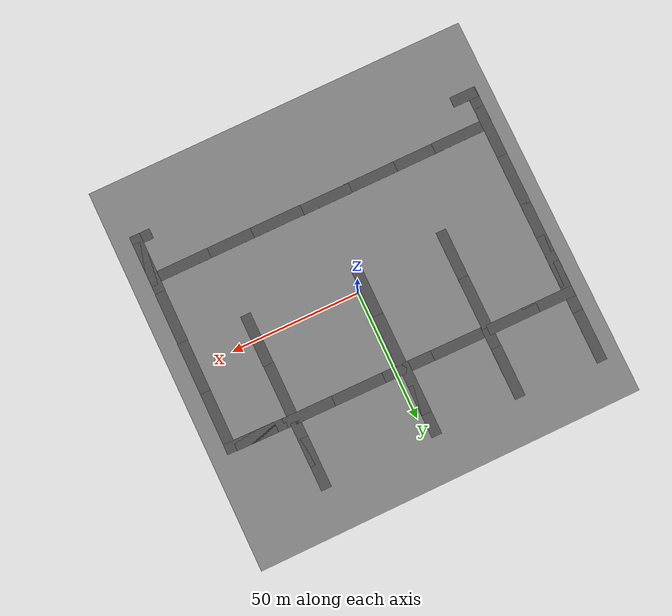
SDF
<sdf version="1.10">
 <world name="default">
  <physics type="ode">
   <max_step_size>0.0040000000000000001</max_step_size>
   <real_time_factor>1</real_time_factor>
   <real_time_update_rate>250</real_time_update_rate>
  </physics>
  <plugin name="gz::sim::systems::Physics" filename="gz-sim-physics-system"/>
  <plugin name="gz::sim::systems::SceneBroadcaster" filename="gz-sim-scene-broadcaster-system"/>
  <plugin name="gz::sim::systems::UserCommands" filename="gz-sim-user-commands-system"/>
  <plugin name="gz::sim::systems::Contact" filename="gz-sim-contact-system"/>
  <plugin name="gz::sim::systems::Imu" filename="gz-sim-imu-system"/>
  <plugin name="gz::sim::systems::AirPressure" filename="gz-sim-air-pressure-system"/>
  <plugin name="gz::sim::systems::ApplyLinkWrench" filename="gz-sim-apply-link-wrench-system"/>
  <plugin name="gz::sim::systems::NavSat" filename="gz-sim-navsat-system"/>
  <plugin name="gz::sim::systems::Sensors" filename="gz-sim-sensors-system">
   <render_engine>ogre2</render_engine>
  </plugin>
  <gravity>0 0 -9.8065999999999995</gravity>
  <magnetic_field>6.0000000000000002e-06 2.3e-05 -4.1999999999999998e-05</magnetic_field>
  <atmosphere type="adiabatic"/>
  <scene>
   <grid>false</grid>
   <ambient>0.400000006 0.400000006 0.400000006 1</ambient>
   <background>0.699999988 0.699999988 0.699999988 1</background>
   <shadows>true</shadows>
  </scene>
  <spherical_coordinates>
   <surface_model>EARTH_WGS84</surface_model>
   <world_frame_orientation>ENU</world_frame_orientation>
   <latitude_deg>50.293615072404997</latitude_deg>
   <longitude_deg>18.674141300161885</longitude_deg>
   <elevation>0</elevation>
   <heading_deg>0</heading_deg>
  </spherical_coordinates>
  <model name="mine">
   <pose>-1.6293554306030273 -0.00092343427240848541 0 0 0 1.5732200240569525</pose>
   <static>true</static>
   <link name="link">
    <collision name="collision">
     <geometry>
      <mesh>
       <uri>file:///home/karol/Desktop/Repo/dron_sim/sim_bringup/worlds/model://mine/meshes/mine.dae</uri>
      </mesh>
     </geometry>
    </collision>
    <visual name="visual">
     <geometry>
      <mesh>
       <uri>file:///home/karol/Desktop/Repo/dron_sim/sim_bringup/worlds/model://mine/meshes/mine.dae</uri>
      </mesh>
     </geometry>
    </visual>
    <inertial>
     <mass>1</mass>
     <inertia><ixx>1</ixx><ixy>0</ixy><ixz>0</ixz><iyy>1</iyy><iyz>0</iyz><izz>1</izz></inertia>
    </inertial>
   </link>
  </model>
  <model name="asphalt_plane_0">
   <static>true</static>
   <link name="link">
    <collision name="collision"><geometry><box><size>20 4 0.10000000000000001</size></box></geometry></collision>
    <visual name="visual">
     <cast_shadows>false</cast_shadows>
     <geometry><box><size>20 4 0.10000000000000001</size></box></geometry>
     <material>
      <script>
       <uri>https://fuel.gazebosim.org/1.0/openrobotics/models/asphalt plane/3/files/materials/scripts</uri>
       <uri>https://fuel.gazebosim.org/1.0/openrobotics/models/asphalt plane/3/files/materials/textures</uri>
       <name>vrc/asphalt</name>
      </script>
     </material>
    </visual>
    <inertial>
     <mass>1</mass>
     <inertia><ixx>1</ixx><ixy>0</ixy><ixz>0</ixz><iyy>1</iyy><iyz>0</iyz><izz>1</izz></inertia>
    </inertial>
   </link>
   <pose>-61.217483520507812 32.286003112792969 0 0 0 -0.006206730176657297</pose>
  </model>
  <model name="asphalt_plane_1">
   <static>true</static>
   <link name="link">
    <collision name="collision"><geometry><box><size>20 4 0.10000000000000001</size></box></geometry></collision>
    <visual name="visual">
     <cast_shadows>false</cast_shadows>
     <geometry><box><size>20 4 0.10000000000000001</size></box></geometry>
     <material>
      <script>
       <uri>https://fuel.gazebosim.org/1.0/openrobotics/models/asphalt plane/3/files/materials/scripts</uri>
       <uri>https://fuel.gazebosim.org/1.0/openrobotics/models/asphalt plane/3/files/materials/textures</uri>
       <name>vrc/asphalt</name>
      </script>
     </material>
    </visual>
    <inertial>
     <mass>1</mass>
     <inertia><ixx>1</ixx><ixy>0</ixy><ixz>0</ixz><iyy>1</iyy><iyz>0</iyz><izz>1</izz></inertia>
    </inertial>
   </link>
   <pose>-24.775663375854492 32.077861785888672 0 0 0 -0.0095926499976310801</pose>
  </model>
  <model name="asphalt_plane_2">
   <static>true</static>
   <link name="link">
    <collision name="collision"><geometry><box><size>20 4 0.10000000000000001</size></box></geometry></collision>
    <visual name="visual">
     <cast_shadows>false</cast_shadows>
     <geometry><box><size>20 4 0.10000000000000001</size></box></geometry>
     <material>
      <script>
       <uri>https://fuel.gazebosim.org/1.0/openrobotics/models/asphalt plane/3/files/materials/scripts</uri>
       <uri>https://fuel.gazebosim.org/1.0/openrobotics/models/asphalt plane/3/files/materials/textures</uri>
       <name>vrc/asphalt</name>
      </script>
     </material>
    </visual>
    <inertial>
     <mass>1</mass>
     <inertia><ixx>1</ixx><ixy>0</ixy><ixz>0</ixz><iyy>1</iyy><iyz>0</iyz><izz>1</izz></inertia>
    </inertial>
   </link>
   <pose>-5.012444019317627 31.79267692565918 0 0 0 -0.0152154007243714</pose>
  </model>
  <model name="asphalt_plane_3">
   <static>true</static>
   <link name="link">
    <collision name="collision"><geometry><box><size>20 4 0.10000000000000001</size></box></geometry></collision>
    <visual name="visual">
     <cast_shadows>false</cast_shadows>
     <geometry><box><size>20 4 0.10000000000000001</size></box></geometry>
     <material>
      <script>
       <uri>https://fuel.gazebosim.org/1.0/openrobotics/models/asphalt plane/3/files/materials/scripts</uri>
       <uri>https://fuel.gazebosim.org/1.0/openrobotics/models/asphalt plane/3/files/materials/textures</uri>
       <name>vrc/asphalt</name>
      </script>
     </material>
    </visual>
    <inertial>
     <mass>1</mass>
     <inertia><ixx>1</ixx><ixy>0</ixy><ixz>0</ixz><iyy>1</iyy><iyz>0</iyz><izz>1</izz></inertia>
    </inertial>
   </link>
   <pose>14.530755043029785 31.585712432861328 0 0 0 -0.0069883098659203335</pose>
  </model>
  <model name="asphalt_plane_4">
   <static>true</static>
   <link name="link">
    <collision name="collision"><geometry><box><size>20 4 0.10000000000000001</size></box></geometry></collision>
    <visual name="visual">
     <cast_shadows>false</cast_shadows>
     <geometry><box><size>20 4 0.10000000000000001</size></box></geometry>
     <material>
      <script>
       <uri>https://fuel.gazebosim.org/1.0/openrobotics/models/asphalt plane/3/files/materials/scripts</uri>
       <uri>https://fuel.gazebosim.org/1.0/openrobotics/models/asphalt plane/3/files/materials/textures</uri>
       <name>vrc/asphalt</name>
      </script>
     </material>
    </visual>
    <inertial>
     <mass>1</mass>
     <inertia><ixx>1</ixx><ixy>0</ixy><ixz>0</ixz><iyy>1</iyy><iyz>0</iyz><izz>1</izz></inertia>
    </inertial>
   </link>
   <pose>34.048507690429688 31.427370071411133 0 0 0 -0.0072270004109684588</pose>
  </model>
  <model name="asphalt_plane_5">
   <static>true</static>
   <link name="link">
    <collision name="collision"><geometry><box><size>20 4 0.10000000000000001</size></box></geometry></collision>
    <visual name="visual">
     <cast_shadows>false</cast_shadows>
     <geometry><box><size>20 4 0.10000000000000001</size></box></geometry>
     <material>
      <script>
       <uri>https://fuel.gazebosim.org/1.0/openrobotics/models/asphalt plane/3/files/materials/scripts</uri>
       <uri>https://fuel.gazebosim.org/1.0/openrobotics/models/asphalt plane/3/files/materials/textures</uri>
       <name>vrc/asphalt</name>
      </script>
     </material>
    </visual>
    <inertial>
     <mass>1</mass>
     <inertia><ixx>1</ixx><ixy>0</ixy><ixz>0</ixz><iyy>1</iyy><iyz>0</iyz><izz>1</izz></inertia>
    </inertial>
   </link>
   <pose>53.194240570068359 31.142539978027344 0 0 0 -0.014885799827273137</pose>
  </model>
  <model name="asphalt_plane_6">
   <static>true</static>
   <link name="link">
    <collision name="collision"><geometry><box><size>20 4 0.10000000000000001</size></box></geometry></collision>
    <visual name="visual">
     <cast_shadows>false</cast_shadows>
     <geometry><box><size>20 4 0.10000000000000001</size></box></geometry>
     <material>
      <script>
       <uri>https://fuel.gazebosim.org/1.0/openrobotics/models/asphalt plane/3/files/materials/scripts</uri>
       <uri>https://fuel.gazebosim.org/1.0/openrobotics/models/asphalt plane/3/files/materials/textures</uri>
       <name>vrc/asphalt</name>
      </script>
     </material>
    </visual>
    <inertial>
     <mass>1</mass>
     <inertia><ixx>1</ixx><ixy>0</ixy><ixz>0</ixz><iyy>1</iyy><iyz>0</iyz><izz>1</izz></inertia>
    </inertial>
   </link>
   <pose>56.965312957763672 30.97804069519043 0 0 0 -0.018850799113130094</pose>
  </model>
  <model name="asphalt_plane_7">
   <static>true</static>
   <link name="link">
    <collision name="collision"><geometry><box><size>4 20 0.10000000000000001</size></box></geometry></collision>
    <visual name="visual">
     <cast_shadows>false</cast_shadows>
     <geometry><box><size>4 20 0.10000000000000001</size></box></geometry>
     <material>
      <script>
       <uri>https://fuel.gazebosim.org/1.0/openrobotics/models/asphalt plane/3/files/materials/scripts</uri>
       <uri>https://fuel.gazebosim.org/1.0/openrobotics/models/asphalt plane/3/files/materials/textures</uri>
       <name>vrc/asphalt</name>
      </script>
     </material>
    </visual>
    <inertial>
     <mass>1</mass>
     <inertia><ixx>1</ixx><ixy>0</ixy><ixz>0</ixz><iyy>1</iyy><iyz>0</iyz><izz>1</izz></inertia>
    </inertial>
   </link>
   <pose>-36.754901885986328 40.108165740966797 0 0 0 0</pose>
  </model>
  <model name="asphalt_plane_8">
   <static>true</static>
   <link name="link">
    <collision name="collision"><geometry><box><size>4 20 0.10000000000000001</size></box></geometry></collision>
    <visual name="visual">
     <cast_shadows>false</cast_shadows>
     <geometry><box><size>4 20 0.10000000000000001</size></box></geometry>
     <material>
      <script>
       <uri>https://fuel.gazebosim.org/1.0/openrobotics/models/asphalt plane/3/files/materials/scripts</uri>
       <uri>https://fuel.gazebosim.org/1.0/openrobotics/models/asphalt plane/3/files/materials/textures</uri>
       <name>vrc/asphalt</name>
      </script>
     </material>
    </visual>
    <inertial>
     <mass>1</mass>
     <inertia><ixx>1</ixx><ixy>0</ixy><ixz>0</ixz><iyy>1</iyy><iyz>0</iyz><izz>1</izz></inertia>
    </inertial>
   </link>
   <pose>-36.830970764160156 48.987098693847656 0 0 0 0</pose>
  </model>
  <model name="asphalt_plane_9">
   <static>true</static>
   <link name="link">
    <collision name="collision"><geometry><box><size>4 20 0.10000000000000001</size></box></geometry></collision>
    <visual name="visual">
     <cast_shadows>false</cast_shadows>
     <geometry><box><size>4 20 0.10000000000000001</size></box></geometry>
     <material>
      <script>
       <uri>https://fuel.gazebosim.org/1.0/openrobotics/models/asphalt plane/3/files/materials/scripts</uri>
       <uri>https://fuel.gazebosim.org/1.0/openrobotics/models/asphalt plane/3/files/materials/textures</uri>
       <name>vrc/asphalt</name>
      </script>
     </material>
    </visual>
    <inertial>
     <mass>1</mass>
     <inertia><ixx>1</ixx><ixy>0</ixy><ixz>0</ixz><iyy>1</iyy><iyz>0</iyz><izz>1</izz></inertia>
    </inertial>
   </link>
   <pose>-69.2471923828125 29.912099838256836 0 0 0 0</pose>
  </model>
  <model name="asphalt_plane_10">
   <static>true</static>
   <link name="link">
    <collision name="collision"><geometry><box><size>4 20 0.10000000000000001</size></box></geometry></collision>
    <visual name="visual">
     <cast_shadows>false</cast_shadows>
     <geometry><box><size>4 20 0.10000000000000001</size></box></geometry>
     <material>
      <script>
       <uri>https://fuel.gazebosim.org/1.0/openrobotics/models/asphalt plane/3/files/materials/scripts</uri>
       <uri>https://fuel.gazebosim.org/1.0/openrobotics/models/asphalt plane/3/files/materials/textures</uri>
       <name>vrc/asphalt</name>
      </script>
     </material>
    </visual>
    <inertial>
     <mass>1</mass>
     <inertia><ixx>1</ixx><ixy>0</ixy><ixz>0</ixz><iyy>1</iyy><iyz>0</iyz><izz>1</izz></inertia>
    </inertial>
   </link>
   <pose>-69.254173278808594 49.835899353027344 0 0 0 0</pose>
  </model>
  <model name="asphalt_plane_11">
   <static>true</static>
   <link name="link">
    <collision name="collision"><geometry><box><size>4 20 0.10000000000000001</size></box></geometry></collision>
    <visual name="visual">
     <cast_shadows>false</cast_shadows>
     <geometry><box><size>4 20 0.10000000000000001</size></box></geometry>
     <material>
      <script>
       <uri>https://fuel.gazebosim.org/1.0/openrobotics/models/asphalt plane/3/files/materials/scripts</uri>
       <uri>https://fuel.gazebosim.org/1.0/openrobotics/models/asphalt plane/3/files/materials/textures</uri>
       <name>vrc/asphalt</name>
      </script>
     </material>
    </visual>
    <inertial>
     <mass>1</mass>
     <inertia><ixx>1</ixx><ixy>0</ixy><ixz>0</ixz><iyy>1</iyy><iyz>0</iyz><izz>1</izz></inertia>
    </inertial>
   </link>
   <pose>-3.8194301128387451 39.800125122070312 0 0 0 0</pose>
  </model>
  <model name="asphalt_plane_12">
   <static>true</static>
   <link name="link">
    <collision name="collision"><geometry><box><size>4 20 0.10000000000000001</size></box></geometry></collision>
    <visual name="visual">
     <cast_shadows>false</cast_shadows>
     <geometry><box><size>4 20 0.10000000000000001</size></box></geometry>
     <material>
      <script>
       <uri>https://fuel.gazebosim.org/1.0/openrobotics/models/asphalt plane/3/files/materials/scripts</uri>
       <uri>https://fuel.gazebosim.org/1.0/openrobotics/models/asphalt plane/3/files/materials/textures</uri>
       <name>vrc/asphalt</name>
      </script>
     </material>
    </visual>
    <inertial>
     <mass>1</mass>
     <inertia><ixx>1</ixx><ixy>0</ixy><ixz>0</ixz><iyy>1</iyy><iyz>0</iyz><izz>1</izz></inertia>
    </inertial>
   </link>
   <pose>-3.8157851696014404 48.527198791503906 0 0 0 0</pose>
  </model>
  <model name="asphalt_plane_13">
   <static>true</static>
   <link name="link">
    <collision name="collision"><geometry><box><size>4 20 0.10000000000000001</size></box></geometry></collision>
    <visual name="visual">
     <cast_shadows>false</cast_shadows>
     <geometry><box><size>4 20 0.10000000000000001</size></box></geometry>
     <material>
      <script>
       <uri>https://fuel.gazebosim.org/1.0/openrobotics/models/asphalt plane/3/files/materials/scripts</uri>
       <uri>https://fuel.gazebosim.org/1.0/openrobotics/models/asphalt plane/3/files/materials/textures</uri>
       <name>vrc/asphalt</name>
      </script>
     </material>
    </visual>
    <inertial>
     <mass>1</mass>
     <inertia><ixx>1</ixx><ixy>0</ixy><ixz>0</ixz><iyy>1</iyy><iyz>0</iyz><izz>1</izz></inertia>
    </inertial>
   </link>
   <pose>40.065200805664062 39.448524475097656 0 0 0 0</pose>
  </model>
  <model name="asphalt_plane_14">
   <static>true</static>
   <link name="link">
    <collision name="collision"><geometry><box><size>4 20 0.10000000000000001</size></box></geometry></collision>
    <visual name="visual">
     <cast_shadows>false</cast_shadows>
     <geometry><box><size>4 20 0.10000000000000001</size></box></geometry>
     <material>
      <script>
       <uri>https://fuel.gazebosim.org/1.0/openrobotics/models/asphalt plane/3/files/materials/scripts</uri>
       <uri>https://fuel.gazebosim.org/1.0/openrobotics/models/asphalt plane/3/files/materials/textures</uri>
       <name>vrc/asphalt</name>
      </script>
     </material>
    </visual>
    <inertial>
     <mass>1</mass>
     <inertia><ixx>1</ixx><ixy>0</ixy><ixz>0</ixz><iyy>1</iyy><iyz>0</iyz><izz>1</izz></inertia>
    </inertial>
   </link>
   <pose>40.003288269042969 48.785900115966797 0 0 0 0</pose>
  </model>
  <model name="asphalt_plane_15">
   <static>true</static>
   <link name="link">
    <collision name="collision"><geometry><box><size>4 20 0.10000000000000001</size></box></geometry></collision>
    <visual name="visual">
     <cast_shadows>false</cast_shadows>
     <geometry><box><size>4 20 0.10000000000000001</size></box></geometry>
     <material>
      <script>
       <uri>https://fuel.gazebosim.org/1.0/openrobotics/models/asphalt plane/3/files/materials/scripts</uri>
       <uri>https://fuel.gazebosim.org/1.0/openrobotics/models/asphalt plane/3/files/materials/textures</uri>
       <name>vrc/asphalt</name>
      </script>
     </material>
    </visual>
    <inertial>
     <mass>1</mass>
     <inertia><ixx>1</ixx><ixy>0</ixy><ixz>0</ixz><iyy>1</iyy><iyz>0</iyz><izz>1</izz></inertia>
    </inertial>
   </link>
   <pose>64.909599304199219 19.035907745361328 0 0 0 0</pose>
  </model>
  <model name="asphalt_plane_16">
   <static>true</static>
   <link name="link">
    <collision name="collision"><geometry><box><size>4 20 0.10000000000000001</size></box></geometry></collision>
    <visual name="visual">
     <cast_shadows>false</cast_shadows>
     <geometry><box><size>4 20 0.10000000000000001</size></box></geometry>
     <material>
      <script>
       <uri>https://fuel.gazebosim.org/1.0/openrobotics/models/asphalt plane/3/files/materials/scripts</uri>
       <uri>https://fuel.gazebosim.org/1.0/openrobotics/models/asphalt plane/3/files/materials/textures</uri>
       <name>vrc/asphalt</name>
      </script>
     </material>
    </visual>
    <inertial>
     <mass>1</mass>
     <inertia><ixx>1</ixx><ixy>0</ixy><ixz>0</ixz><iyy>1</iyy><iyz>0</iyz><izz>1</izz></inertia>
    </inertial>
   </link>
   <pose>64.915397644042969 -0.956828773021698 0 0 0 0</pose>
  </model>
  <model name="asphalt_plane_17">
   <static>true</static>
   <link name="link">
    <collision name="collision"><geometry><box><size>4 20 0.10000000000000001</size></box></geometry></collision>
    <visual name="visual">
     <cast_shadows>false</cast_shadows>
     <geometry><box><size>4 20 0.10000000000000001</size></box></geometry>
     <material>
      <script>
       <uri>https://fuel.gazebosim.org/1.0/openrobotics/models/asphalt plane/3/files/materials/scripts</uri>
       <uri>https://fuel.gazebosim.org/1.0/openrobotics/models/asphalt plane/3/files/materials/textures</uri>
       <name>vrc/asphalt</name>
      </script>
     </material>
    </visual>
    <inertial>
     <mass>1</mass>
     <inertia><ixx>1</ixx><ixy>0</ixy><ixz>0</ixz><iyy>1</iyy><iyz>0</iyz><izz>1</izz></inertia>
    </inertial>
   </link>
   <pose>64.841201782226562 -20.834541320800781 0 0 0 0</pose>
  </model>
  <model name="asphalt_plane_18">
   <static>true</static>
   <link name="link">
    <collision name="collision"><geometry><box><size>4 20 0.10000000000000001</size></box></geometry></collision>
    <visual name="visual">
     <cast_shadows>false</cast_shadows>
     <geometry><box><size>4 20 0.10000000000000001</size></box></geometry>
     <material>
      <script>
       <uri>https://fuel.gazebosim.org/1.0/openrobotics/models/asphalt plane/3/files/materials/scripts</uri>
       <uri>https://fuel.gazebosim.org/1.0/openrobotics/models/asphalt plane/3/files/materials/textures</uri>
       <name>vrc/asphalt</name>
      </script>
     </material>
    </visual>
    <inertial>
     <mass>1</mass>
     <inertia><ixx>1</ixx><ixy>0</ixy><ixz>0</ixz><iyy>1</iyy><iyz>0</iyz><izz>1</izz></inertia>
    </inertial>
   </link>
   <pose>64.738609313964844 -40.751701354980469 0 0 0 0</pose>
  </model>
  <model name="asphalt_plane_19">
   <static>true</static>
   <link name="link">
    <collision name="collision"><geometry><box><size>4 20 0.10000000000000001</size></box></geometry></collision>
    <visual name="visual">
     <cast_shadows>false</cast_shadows>
     <geometry><box><size>4 20 0.10000000000000001</size></box></geometry>
     <material>
      <script>
       <uri>https://fuel.gazebosim.org/1.0/openrobotics/models/asphalt plane/3/files/materials/scripts</uri>
       <uri>https://fuel.gazebosim.org/1.0/openrobotics/models/asphalt plane/3/files/materials/textures</uri>
       <name>vrc/asphalt</name>
      </script>
     </material>
    </visual>
    <inertial>
     <mass>1</mass>
     <inertia><ixx>1</ixx><ixy>0</ixy><ixz>0</ixz><iyy>1</iyy><iyz>0</iyz><izz>1</izz></inertia>
    </inertial>
   </link>
   <pose>-69.308998107910156 6.0952801704406738 0 0 0 0</pose>
  </model>
  <model name="asphalt_plane_20">
   <static>true</static>
   <link name="link">
    <collision name="collision"><geometry><box><size>4 20 0.10000000000000001</size></box></geometry></collision>
    <visual name="visual">
     <cast_shadows>false</cast_shadows>
     <geometry><box><size>4 20 0.10000000000000001</size></box></geometry>
     <material>
      <script>
       <uri>https://fuel.gazebosim.org/1.0/openrobotics/models/asphalt plane/3/files/materials/scripts</uri>
       <uri>https://fuel.gazebosim.org/1.0/openrobotics/models/asphalt plane/3/files/materials/textures</uri>
       <name>vrc/asphalt</name>
      </script>
     </material>
    </visual>
    <inertial>
     <mass>1</mass>
     <inertia><ixx>1</ixx><ixy>0</ixy><ixz>0</ixz><iyy>1</iyy><iyz>0</iyz><izz>1</izz></inertia>
    </inertial>
   </link>
   <pose>-69.332267761230469 -13.41919994354248 0 0 0 0</pose>
  </model>
  <model name="asphalt_plane_21">
   <static>true</static>
   <link name="link">
    <collision name="collision"><geometry><box><size>4 20 0.10000000000000001</size></box></geometry></collision>
    <visual name="visual">
     <cast_shadows>false</cast_shadows>
     <geometry><box><size>4 20 0.10000000000000001</size></box></geometry>
     <material>
      <script>
       <uri>https://fuel.gazebosim.org/1.0/openrobotics/models/asphalt plane/3/files/materials/scripts</uri>
       <uri>https://fuel.gazebosim.org/1.0/openrobotics/models/asphalt plane/3/files/materials/textures</uri>
       <name>vrc/asphalt</name>
      </script>
     </material>
    </visual>
    <inertial>
     <mass>1</mass>
     <inertia><ixx>1</ixx><ixy>0</ixy><ixz>0</ixz><iyy>1</iyy><iyz>0</iyz><izz>1</izz></inertia>
    </inertial>
   </link>
   <pose>-69.383697509765625 -33.147899627685547 0 0 0 0</pose>
  </model>
  <model name="asphalt_plane_22">
   <static>true</static>
   <link name="link">
    <collision name="collision"><geometry><box><size>4 20 0.10000000000000001</size></box></geometry></collision>
    <visual name="visual">
     <cast_shadows>false</cast_shadows>
     <geometry><box><size>4 20 0.10000000000000001</size></box></geometry>
     <material>
      <script>
       <uri>https://fuel.gazebosim.org/1.0/openrobotics/models/asphalt plane/3/files/materials/scripts</uri>
       <uri>https://fuel.gazebosim.org/1.0/openrobotics/models/asphalt plane/3/files/materials/textures</uri>
       <name>vrc/asphalt</name>
      </script>
     </material>
    </visual>
    <inertial>
     <mass>1</mass>
     <inertia><ixx>1</ixx><ixy>0</ixy><ixz>0</ixz><iyy>1</iyy><iyz>0</iyz><izz>1</izz></inertia>
    </inertial>
   </link>
   <pose>-69.411453247070312 -40.968101501464844 0 0 0 0</pose>
  </model>
  <model name="asphalt_plane">
   <static>true</static>
   <link name="link">
    <collision name="collision"><geometry><box><size>20 4 0.10000000000000001</size></box></geometry></collision>
    <visual name="visual">
     <cast_shadows>false</cast_shadows>
     <geometry><box><size>20 4 0.10000000000000001</size></box></geometry>
     <material>
      <script>
       <uri>https://fuel.gazebosim.org/1.0/openrobotics/models/asphalt plane/3/files/materials/scripts</uri>
       <uri>https://fuel.gazebosim.org/1.0/openrobotics/models/asphalt plane/3/files/materials/textures</uri>
       <name>vrc/asphalt</name>
      </script>
     </material>
    </visual>
    <inertial>
     <mass>1</mass>
     <inertia><ixx>1</ixx><ixy>0</ixy><ixz>0</ixz><iyy>1</iyy><iyz>0</iyz><izz>1</izz></inertia>
    </inertial>
   </link>
   <pose>-46.877128637557007 32.255424064310205 0 0 0 0</pose>
  </model>
  <model name="asphalt_plane_23">
   <static>true</static>
   <link name="link">
    <collision name="collision"><geometry><box><size>20 4 0.10000000000000001</size></box></geometry></collision>
    <visual name="visual">
     <cast_shadows>false</cast_shadows>
     <geometry><box><size>20 4 0.10000000000000001</size></box></geometry>
     <material>
      <script>
       <uri>https://fuel.gazebosim.org/1.0/openrobotics/models/asphalt plane/3/files/materials/scripts</uri>
       <uri>https://fuel.gazebosim.org/1.0/openrobotics/models/asphalt plane/3/files/materials/textures</uri>
       <name>vrc/asphalt</name>
      </script>
     </material>
    </visual>
    <inertial>
     <mass>1</mass>
     <inertia><ixx>1</ixx><ixy>0</ixy><ixz>0</ixz><iyy>1</iyy><iyz>0</iyz><izz>1</izz></inertia>
    </inertial>
   </link>
   <pose>-57.700267179701569 -36.420220784361767 0 0 0 0</pose>
  </model>
  <model name="asphalt_plane_24">
   <static>true</static>
   <link name="link">
    <collision name="collision"><geometry><box><size>20 4 0.10000000000000001</size></box></geometry></collision>
    <visual name="visual">
     <cast_shadows>false</cast_shadows>
     <geometry><box><size>20 4 0.10000000000000001</size></box></geometry>
     <material>
      <script>
       <uri>https://fuel.gazebosim.org/1.0/openrobotics/models/asphalt plane/3/files/materials/scripts</uri>
       <uri>https://fuel.gazebosim.org/1.0/openrobotics/models/asphalt plane/3/files/materials/textures</uri>
       <name>vrc/asphalt</name>
      </script>
     </material>
    </visual>
    <inertial>
     <mass>1</mass>
     <inertia><ixx>1</ixx><ixy>0</ixy><ixz>0</ixz><iyy>1</iyy><iyz>0</iyz><izz>1</izz></inertia>
    </inertial>
   </link>
   <pose>-40.948898315429688 -36.324001312255859 0 0 0 0</pose>
  </model>
  <model name="asphalt_plane_25">
   <static>true</static>
   <link name="link">
    <collision name="collision"><geometry><box><size>20 4 0.10000000000000001</size></box></geometry></collision>
    <visual name="visual">
     <cast_shadows>false</cast_shadows>
     <geometry><box><size>20 4 0.10000000000000001</size></box></geometry>
     <material>
      <script>
       <uri>https://fuel.gazebosim.org/1.0/openrobotics/models/asphalt plane/3/files/materials/scripts</uri>
       <uri>https://fuel.gazebosim.org/1.0/openrobotics/models/asphalt plane/3/files/materials/textures</uri>
       <name>vrc/asphalt</name>
      </script>
     </material>
    </visual>
    <inertial>
     <mass>1</mass>
     <inertia><ixx>1</ixx><ixy>0</ixy><ixz>0</ixz><iyy>1</iyy><iyz>0</iyz><izz>1</izz></inertia>
    </inertial>
   </link>
   <pose>-22.23546337860471 -36.288053687977403 0 0 0 0</pose>
  </model>
  <model name="asphalt_plane_26">
   <static>true</static>
   <link name="link">
    <collision name="collision"><geometry><box><size>20 4 0.10000000000000001</size></box></geometry></collision>
    <visual name="visual">
     <cast_shadows>false</cast_shadows>
     <geometry><box><size>20 4 0.10000000000000001</size></box></geometry>
     <material>
      <script>
       <uri>https://fuel.gazebosim.org/1.0/openrobotics/models/asphalt plane/3/files/materials/scripts</uri>
       <uri>https://fuel.gazebosim.org/1.0/openrobotics/models/asphalt plane/3/files/materials/textures</uri>
       <name>vrc/asphalt</name>
      </script>
     </material>
    </visual>
    <inertial>
     <mass>1</mass>
     <inertia><ixx>1</ixx><ixy>0</ixy><ixz>0</ixz><iyy>1</iyy><iyz>0</iyz><izz>1</izz></inertia>
    </inertial>
   </link>
   <pose>-3.9713770335818666 -36.210481947376941 0 0 0 0</pose>
  </model>
  <model name="asphalt_plane_27">
   <static>true</static>
   <link name="link">
    <collision name="collision"><geometry><box><size>20 4 0.10000000000000001</size></box></geometry></collision>
    <visual name="visual">
     <cast_shadows>false</cast_shadows>
     <geometry><box><size>20 4 0.10000000000000001</size></box></geometry>
     <material>
      <script>
       <uri>https://fuel.gazebosim.org/1.0/openrobotics/models/asphalt plane/3/files/materials/scripts</uri>
       <uri>https://fuel.gazebosim.org/1.0/openrobotics/models/asphalt plane/3/files/materials/textures</uri>
       <name>vrc/asphalt</name>
      </script>
     </material>
    </visual>
    <inertial>
     <mass>1</mass>
     <inertia><ixx>1</ixx><ixy>0</ixy><ixz>0</ixz><iyy>1</iyy><iyz>0</iyz><izz>1</izz></inertia>
    </inertial>
   </link>
   <pose>15.489812623602063 -36.309740767331981 0 0 0 0</pose>
  </model>
  <model name="asphalt_plane_28">
   <static>true</static>
   <link name="link">
    <collision name="collision"><geometry><box><size>20 4 0.10000000000000001</size></box></geometry></collision>
    <visual name="visual">
     <cast_shadows>false</cast_shadows>
     <geometry><box><size>20 4 0.10000000000000001</size></box></geometry>
     <material>
      <script>
       <uri>https://fuel.gazebosim.org/1.0/openrobotics/models/asphalt plane/3/files/materials/scripts</uri>
       <uri>https://fuel.gazebosim.org/1.0/openrobotics/models/asphalt plane/3/files/materials/textures</uri>
       <name>vrc/asphalt</name>
      </script>
     </material>
    </visual>
    <inertial>
     <mass>1</mass>
     <inertia><ixx>1</ixx><ixy>0</ixy><ixz>0</ixz><iyy>1</iyy><iyz>0</iyz><izz>1</izz></inertia>
    </inertial>
   </link>
   <pose>32.744171086946977 -36.31760450865837 0 0 0 0</pose>
  </model>
  <model name="asphalt_plane_29">
   <static>true</static>
   <link name="link">
    <collision name="collision"><geometry><box><size>20 4 0.10000000000000001</size></box></geometry></collision>
    <visual name="visual">
     <cast_shadows>false</cast_shadows>
     <geometry><box><size>20 4 0.10000000000000001</size></box></geometry>
     <material>
      <script>
       <uri>https://fuel.gazebosim.org/1.0/openrobotics/models/asphalt plane/3/files/materials/scripts</uri>
       <uri>https://fuel.gazebosim.org/1.0/openrobotics/models/asphalt plane/3/files/materials/textures</uri>
       <name>vrc/asphalt</name>
      </script>
     </material>
    </visual>
    <inertial>
     <mass>1</mass>
     <inertia><ixx>1</ixx><ixy>0</ixy><ixz>0</ixz><iyy>1</iyy><iyz>0</iyz><izz>1</izz></inertia>
    </inertial>
   </link>
   <pose>52.731498718261719 -36.303230285644531 0 0 0 0</pose>
  </model>
  <model name="asphalt_plane_30">
   <static>true</static>
   <link name="link">
    <collision name="collision"><geometry><box><size>20 20 0.10000000000000001</size></box></geometry></collision>
    <visual name="visual">
     <cast_shadows>false</cast_shadows>
     <geometry><box><size>4 20 0.10000000000000001</size></box></geometry>
     <material>
      <script>
       <uri>https://fuel.gazebosim.org/1.0/openrobotics/models/asphalt plane/3/files/materials/scripts</uri>
       <uri>https://fuel.gazebosim.org/1.0/openrobotics/models/asphalt plane/3/files/materials/textures</uri>
       <name>vrc/asphalt</name>
      </script>
     </material>
    </visual>
    <inertial>
     <mass>1</mass>
     <inertia><ixx>1</ixx><ixy>0</ixy><ixz>0</ixz><iyy>1</iyy><iyz>0</iyz><izz>1</izz></inertia>
    </inertial>
   </link>
   <pose>-37.022344134098667 21.171242143334805 0 0 0 0</pose>
  </model>
  <model name="asphalt_plane_31">
   <static>true</static>
   <link name="link">
    <collision name="collision"><geometry><box><size>4 20 0.10000000000000001</size></box></geometry></collision>
    <visual name="visual">
     <cast_shadows>false</cast_shadows>
     <geometry><box><size>4 20 0.10000000000000001</size></box></geometry>
     <material>
      <script>
       <uri>https://fuel.gazebosim.org/1.0/openrobotics/models/asphalt plane/3/files/materials/scripts</uri>
       <uri>https://fuel.gazebosim.org/1.0/openrobotics/models/asphalt plane/3/files/materials/textures</uri>
       <name>vrc/asphalt</name>
      </script>
     </material>
    </visual>
    <inertial>
     <mass>1</mass>
     <inertia><ixx>1</ixx><ixy>0</ixy><ixz>0</ixz><iyy>1</iyy><iyz>0</iyz><izz>1</izz></inertia>
    </inertial>
   </link>
   <pose>-36.973930358886719 2.2217600345611572 0 0 0 0</pose>
  </model>
  <model name="asphalt_plane_32">
   <static>true</static>
   <link name="link">
    <collision name="collision"><geometry><box><size>4 20 0.10000000000000001</size></box></geometry></collision>
    <visual name="visual">
     <cast_shadows>false</cast_shadows>
     <geometry><box><size>4 20 0.10000000000000001</size></box></geometry>
     <material>
      <script>
       <uri>https://fuel.gazebosim.org/1.0/openrobotics/models/asphalt plane/3/files/materials/scripts</uri>
       <uri>https://fuel.gazebosim.org/1.0/openrobotics/models/asphalt plane/3/files/materials/textures</uri>
       <name>vrc/asphalt</name>
      </script>
     </material>
    </visual>
    <inertial>
     <mass>1</mass>
     <inertia><ixx>1</ixx><ixy>0</ixy><ixz>0</ixz><iyy>1</iyy><iyz>0</iyz><izz>1</izz></inertia>
    </inertial>
   </link>
   <pose>-3.2140129812991631 20.225966468646128 0 0 0 0</pose>
  </model>
  <model name="asphalt_plane_33">
   <static>true</static>
   <link name="link">
    <collision name="collision"><geometry><box><size>4 20 0.10000000000000001</size></box></geometry></collision>
    <visual name="visual">
     <cast_shadows>false</cast_shadows>
     <geometry><box><size>4 20 0.10000000000000001</size></box></geometry>
     <material>
      <script>
       <uri>https://fuel.gazebosim.org/1.0/openrobotics/models/asphalt plane/3/files/materials/scripts</uri>
       <uri>https://fuel.gazebosim.org/1.0/openrobotics/models/asphalt plane/3/files/materials/textures</uri>
       <name>vrc/asphalt</name>
      </script>
     </material>
    </visual>
    <inertial>
     <mass>1</mass>
     <inertia><ixx>1</ixx><ixy>0</ixy><ixz>0</ixz><iyy>1</iyy><iyz>0</iyz><izz>1</izz></inertia>
    </inertial>
   </link>
   <pose>-3.1524889469146729 0.81530600786209106 0 0 0 0</pose>
  </model>
  <model name="asphalt_plane_34">
   <static>true</static>
   <link name="link">
    <collision name="collision"><geometry><box><size>4 20 0.10000000000000001</size></box></geometry></collision>
    <visual name="visual">
     <cast_shadows>false</cast_shadows>
     <geometry><box><size>4 20 0.10000000000000001</size></box></geometry>
     <material>
      <script>
       <uri>https://fuel.gazebosim.org/1.0/openrobotics/models/asphalt plane/3/files/materials/scripts</uri>
       <uri>https://fuel.gazebosim.org/1.0/openrobotics/models/asphalt plane/3/files/materials/textures</uri>
       <name>vrc/asphalt</name>
      </script>
     </material>
    </visual>
    <inertial>
     <mass>1</mass>
     <inertia><ixx>1</ixx><ixy>0</ixy><ixz>0</ixz><iyy>1</iyy><iyz>0</iyz><izz>1</izz></inertia>
    </inertial>
   </link>
   <pose>40.150882720947266 19.589000701904297 0 0 0 0</pose>
  </model>
  <model name="asphalt_plane_35">
   <static>true</static>
   <link name="link">
    <collision name="collision"><geometry><box><size>4 20 0.10000000000000001</size></box></geometry></collision>
    <visual name="visual">
     <cast_shadows>false</cast_shadows>
     <geometry><box><size>4 20 0.10000000000000001</size></box></geometry>
     <material>
      <script>
       <uri>https://fuel.gazebosim.org/1.0/openrobotics/models/asphalt plane/3/files/materials/scripts</uri>
       <uri>https://fuel.gazebosim.org/1.0/openrobotics/models/asphalt plane/3/files/materials/textures</uri>
       <name>vrc/asphalt</name>
      </script>
     </material>
    </visual>
    <inertial>
     <mass>1</mass>
     <inertia><ixx>1</ixx><ixy>0</ixy><ixz>0</ixz><iyy>1</iyy><iyz>0</iyz><izz>1</izz></inertia>
    </inertial>
   </link>
   <pose>40.235477447509766 -0.25200200080871582 0 0 0 0</pose>
  </model>
  <model name="asphalt_plane_36">
   <static>true</static>
   <link name="link">
    <collision name="collision"><geometry><box><size>4 20 0.10000000000000001</size></box></geometry></collision>
    <visual name="visual">
     <cast_shadows>false</cast_shadows>
     <geometry><box><size>4 20 0.10000000000000001</size></box></geometry>
     <material>
      <script>
       <uri>https://fuel.gazebosim.org/1.0/openrobotics/models/asphalt plane/3/files/materials/scripts</uri>
       <uri>https://fuel.gazebosim.org/1.0/openrobotics/models/asphalt plane/3/files/materials/textures</uri>
       <name>vrc/asphalt</name>
      </script>
     </material>
    </visual>
    <inertial>
     <mass>1</mass>
     <inertia><ixx>1</ixx><ixy>0</ixy><ixz>0</ixz><iyy>1</iyy><iyz>0</iyz><izz>1</izz></inertia>
    </inertial>
   </link>
   <pose>-69.319404602050781 19.384000778198242 0 0 0 0</pose>
  </model>
  <model name="asphalt_plane_37">
   <static>true</static>
   <link name="link">
    <collision name="collision"><geometry><box><size>4 20 0.10000000000000001</size></box></geometry></collision>
    <visual name="visual">
     <cast_shadows>false</cast_shadows>
     <geometry><box><size>4 20 0.10000000000000001</size></box></geometry>
     <material>
      <script>
       <uri>https://fuel.gazebosim.org/1.0/openrobotics/models/asphalt plane/3/files/materials/scripts</uri>
       <uri>https://fuel.gazebosim.org/1.0/openrobotics/models/asphalt plane/3/files/materials/textures</uri>
       <name>vrc/asphalt</name>
      </script>
     </material>
    </visual>
    <inertial>
     <mass>1</mass>
     <inertia><ixx>1</ixx><ixy>0</ixy><ixz>0</ixz><iyy>1</iyy><iyz>0</iyz><izz>1</izz></inertia>
    </inertial>
   </link>
   <pose>64.730400085449219 -43.835109710693359 0 0 0 0</pose>
  </model>
  <model name="asphalt_plane_38">
   <static>true</static>
   <link name="link">
    <collision name="collision"><geometry><box><size>10 4 0.10000000000000001</size></box></geometry></collision>
    <visual name="visual">
     <cast_shadows>false</cast_shadows>
     <geometry><box><size>10 4 0.10000000000000001</size></box></geometry>
     <material>
      <script>
       <uri>https://fuel.gazebosim.org/1.0/openrobotics/models/asphalt plane/3/files/materials/scripts</uri>
       <uri>https://fuel.gazebosim.org/1.0/openrobotics/models/asphalt plane/3/files/materials/textures</uri>
       <name>vrc/asphalt</name>
      </script>
     </material>
    </visual>
    <inertial>
     <mass>1</mass>
     <inertia><ixx>1</ixx><ixy>0</ixy><ixz>0</ixz><iyy>1</iyy><iyz>0</iyz><izz>1</izz></inertia>
    </inertial>
   </link>
   <pose>-66.172256469726562 -49.031898498535156 0 0 0 0</pose>
  </model>
  <model name="asphalt_plane_39">
   <static>true</static>
   <link name="link">
    <collision name="collision"><geometry><box><size>6 4 0.10000000000000001</size></box></geometry></collision>
    <visual name="visual">
     <cast_shadows>false</cast_shadows>
     <geometry><box><size>6 4 0.10000000000000001</size></box></geometry>
     <material>
      <script>
       <uri>https://fuel.gazebosim.org/1.0/openrobotics/models/asphalt plane/3/files/materials/scripts</uri>
       <uri>https://fuel.gazebosim.org/1.0/openrobotics/models/asphalt plane/3/files/materials/textures</uri>
       <name>vrc/asphalt</name>
      </script>
     </material>
    </visual>
    <inertial>
     <mass>1</mass>
     <inertia><ixx>1</ixx><ixy>0</ixy><ixz>0</ixz><iyy>1</iyy><iyz>0</iyz><izz>1</izz></inertia>
    </inertial>
   </link>
   <pose>61.7843017578125 -51.822517395019531 0 0 0 0</pose>
  </model>
  <light name="sun" type="directional">
   <pose>0 0 20 -1.3 0 0.5</pose>
   <intensity>1</intensity>
   <direction>0 0 -1</direction>
   <diffuse>1 1 1 1</diffuse>
   <specular>0.100000001 0.100000001 0.100000001 1</specular>
   <attenuation><range>10</range><linear>1</linear><constant>1</constant><quadratic>0</quadratic></attenuation>
   <spot><inner_angle>0</inner_angle><outer_angle>0</outer_angle><falloff>0</falloff></spot>
  </light>
 </world>
</sdf>
